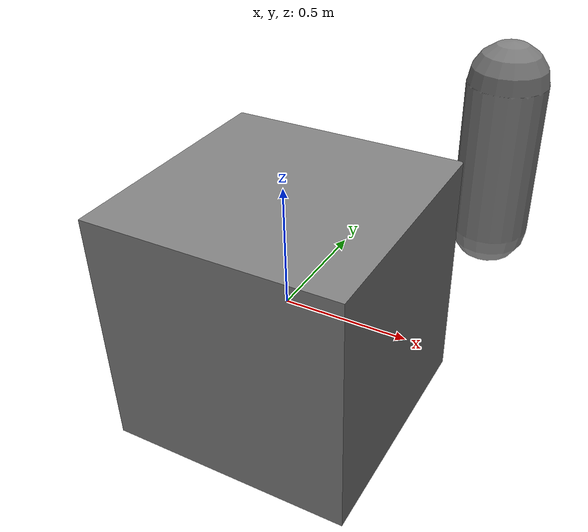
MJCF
<mujoco model="cap_box_edge">
            <option gravity="0 0 0" timestep="0.001"/>
            <worldbody>
                <body name="box" pos="0 0 0">
                    <joint type="free"/>
                    <geom type="box" size="0.5 0.5 0.5"/>
                </body>
                <body name="cap" pos="0.6 0.6 0.5">
                    <joint type="free"/>
                    <geom type="capsule" size="0.15 0.3"/>
                </body>
            </worldbody>
        </mujoco>
